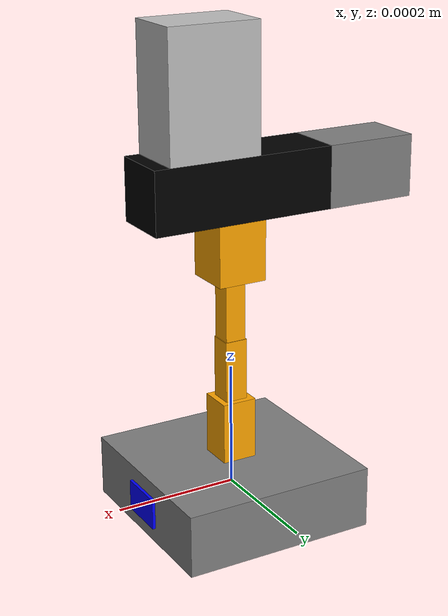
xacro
<?xml version="1.0" ?>
<robot xmlns:xacro="http://ros.org/wiki/xacro" name="my_robot">
    <!-- Parameters -->
    <xacro:arg name="base_height" default="0.0001"/>
    <xacro:property name="base_height" value="$(arg base_height)"/>
    <xacro:arg name="base_limit_upper" default="0.0001"/>
    <xacro:property name="base_limit_upper" value="$(arg base_limit_upper)"/>
    <xacro:arg name="base_limit_lower" default="0.0001"/>
    <xacro:property name="base_limit_lower" value="$(arg base_limit_lower)"/>

    <xacro:arg name="link1_length" default="0.0001"/>
    <xacro:property name="link1_length" value="$(arg link1_length)"/>
    <xacro:arg name="link1_limit_lower" default="0.0001"/>
    <xacro:property name="link1_limit_lower" value="$(arg link1_limit_lower)"/>
    <xacro:arg name="link1_limit_upper" default="0.0001"/>
    <xacro:property name="link1_limit_upper" value="$(arg link1_limit_upper)"/>

    <xacro:arg name="link2_length" default="0.0001"/>
    <xacro:property name="link2_length" value="$(arg link2_length)"/>
    <xacro:arg name="link2_limit_lower" default="0.0001"/>
    <xacro:property name="link2_limit_lower" value="$(arg link2_limit_lower)"/>
    <xacro:arg name="link2_limit_upper" default="0.0001"/>
    <xacro:property name="link2_limit_upper" value="$(arg link2_limit_upper)"/>

    <xacro:arg name="link3_length" default="0.0001"/>
    <xacro:property name="link3_length" value="$(arg link3_length)"/>
    <xacro:arg name="link3_limit_lower" default="0.0001"/>
    <xacro:property name="link3_limit_lower" value="$(arg link3_limit_lower)"/>
    <xacro:arg name="link3_limit_upper" default="0.0001"/>
    <xacro:property name="link3_limit_upper" value="$(arg link3_limit_upper)"/>

    <xacro:arg name="link4_length" default="0.0001"/>
    <xacro:property name="link4_length" value="$(arg link4_length)"/>
    <xacro:arg name="link4_limit_lower" default="0.0001"/>
    <xacro:property name="link4_limit_lower" value="$(arg link4_limit_lower)"/>
    <xacro:arg name="link4_limit_upper" default="0.0001"/>
    <xacro:property name="link4_limit_upper" value="$(arg link4_limit_upper)"/>

    <xacro:arg name="link5_length" default="0.0001"/>
    <xacro:property name="link5_length" value="$(arg link5_length)"/>

    <!-- Materials -->
    <material name="gray">
        <color rgba="0.5 0.5 0.5 1.0"/>
    </material>
    <material name="red">
        <color rgba="1.0 0.0 0.0 1.0"/>
    </material>
    <material name="blue">
        <color rgba="0.0 0.0 1.0 1.0"/>
    </material>
    <material name="green">
        <color rgba="0.0 1.0 0.0 1.0"/>
    </material>
    <material name="orange">
        <color rgba="1.0 0.65 0.0 1.0"/>
    </material>
    <material name="black">
        <color rgba="0.0 0.0 0.0 1.0"/>
    </material>
    <material name="silver">
        <color rgba="0.75 0.75 0.75 1.0"/>
    </material>

    <!-- Base Link -->
    <link name="base_link">
        <visual>
            <geometry>
                <box size="${base_height/0.05*0.158} ${base_height/0.05*0.158} ${base_height}"/>
            </geometry>
            <material name="gray"/>
        </visual>
    </link>

    <link name="plate">
        <visual>
            <origin xyz="0 0 0" rpy="0 0 0"/>
            <geometry>
                <box size="${base_height/0.05*0.01/4} ${base_height/0.05*0.158/4} ${base_height/2}"/>
            </geometry>
            <material name="blue"/>
        </visual>
    </link>

    <joint name="plate_joint" type="fixed">
        <parent link="base_link"/>
        <child link="plate"/>
        <origin xyz="${base_height/0.05*0.158/2 + base_height/0.05*0.01/8} 0 0" rpy="0 0 0"/>
    </joint>

    <!-- Joint 1: Base to Link1 -->
    <joint name="Base" type="revolute">
        <parent link="base_link"/>
        <child link="link1"/>
        <origin xyz="0 0 ${base_height/2}" rpy="0 0 0"/>
        <axis xyz="0 0 1"/>
        <limit effort="10" lower="${base_limit_lower}" upper="${base_limit_upper}" velocity="5.58"/>
    </joint>

    <link name="link1">
        <visual>
            <origin xyz="0 0 ${link1_length/2}" rpy="0 0 0"/>
            <geometry>
                <box size="${link1_length/0.088*0.05} ${link1_length/0.088*0.05} ${link1_length}"/>
            </geometry>
            <material name="orange"/>
        </visual>
    </link>

    <!-- Joint 2: Link1 to Link2 -->
    <joint name="Rear_Arm" type="revolute">
        <parent link="link1"/>
        <child link="link2"/>
        <origin xyz="0 0 ${link1_length}" rpy="0 0 0"/>
        <axis xyz="0 1 0"/>
        <limit effort="10" lower="${link1_limit_lower}" upper="${link1_limit_upper}" velocity="5.58"/>
    </joint>

    <link name="link2">
        <visual>
            <origin xyz="0 0 ${link2_length/2}" rpy="0 0 0"/>
            <geometry>
                <box size="${link2_length/0.135*0.05} ${link2_length/0.135*0.05} ${link2_length}"/>
            </geometry>
            <material name="orange"/>
        </visual>
    </link>

    <!-- Joint 3: Link2 to Link3 -->
    <joint name="Forearm" type="revolute">
        <parent link="link2"/>
        <child link="link3"/>
        <origin xyz="0 0 ${link2_length}" rpy="0 0 0"/>
        <axis xyz="0 1 0"/>
        <limit effort="10" lower="${link2_limit_lower}" upper="${link2_limit_upper}" velocity="5.58"/>
    </joint>

    <link name="link3">
        <visual>
            <origin xyz="0 0 ${link3_length/2}" rpy="0 0 0"/>
            <geometry>
                <box size="${link3_length/0.147*0.05} ${link3_length/0.147*0.05} ${link3_length}"/>
            </geometry>
            <material name="orange"/>
        </visual>
    </link>

    <!-- Joint 4: Link3 to Link4 -->
    <joint name="End-effector_rotation" type="revolute">
        <parent link="link3"/>
        <child link="link4"/>
        <origin xyz="0 0 ${link3_length}" rpy="0 0 0"/>
        <axis xyz="0 1 0"/>
        <limit effort="10" lower="${link3_limit_lower}" upper="${link3_limit_upper}" velocity="5.58"/>
    </joint>

    <link name="link4">
        <visual>
            <origin xyz="0 0 ${link4_length/2}" rpy="0 0 0"/>
            <geometry>
                <box size="${link4_length/0.05*0.04} ${link4_length/0.05*0.04} ${link4_length}"/>
            </geometry>
            <material name="orange"/>
        </visual>
    </link>

    <!-- Joint 5: Link4 to Gripper -->
    <joint name="Gripper_rotation" type="revolute">
        <parent link="link4"/>
        <child link="gripper"/>
        <origin xyz="0 0 ${link4_length}" rpy="0 0 0"/>
        <axis xyz="0 0 1"/>
        <limit effort="10" lower="${link4_limit_lower}" upper="${link4_limit_upper}" velocity="8.37"/>
    </joint>

    <link name="gripper">
        <visual>
            <origin xyz="0 0 ${link5_length/2}" rpy="0 0 0"/>
            <geometry>
                <box size="${link5_length*3} ${link5_length} ${link5_length}"/>
            </geometry>
            <material name="black"/>
        </visual>
        <visual>
            <origin xyz="${link5_length/2} 0 ${link5_length*2}" rpy="0 0 0"/>
            <geometry>
                <box size="${link5_length/2*3} ${link5_length} ${link5_length*2}"/>
            </geometry>
            <material name="silver"/>
        </visual>
    </link>

    <link name="pump">
    <visual>
        <origin xyz="${link5_length*0.75} 0 ${link5_length/2}" rpy="0 0 0"/>
        <geometry>
            <box size="${link5_length*1.5} ${link5_length} ${link5_length}"/>
        </geometry>
        <material name="gray"/>
    </visual>
    </link>

    <joint name="pump_joint" type="fixed">
        <parent link="gripper"/>
        <child link="pump"/>
        <origin xyz="${-link5_length*3} 0 0" rpy="0 0 0"/>
    </joint>

</robot>
